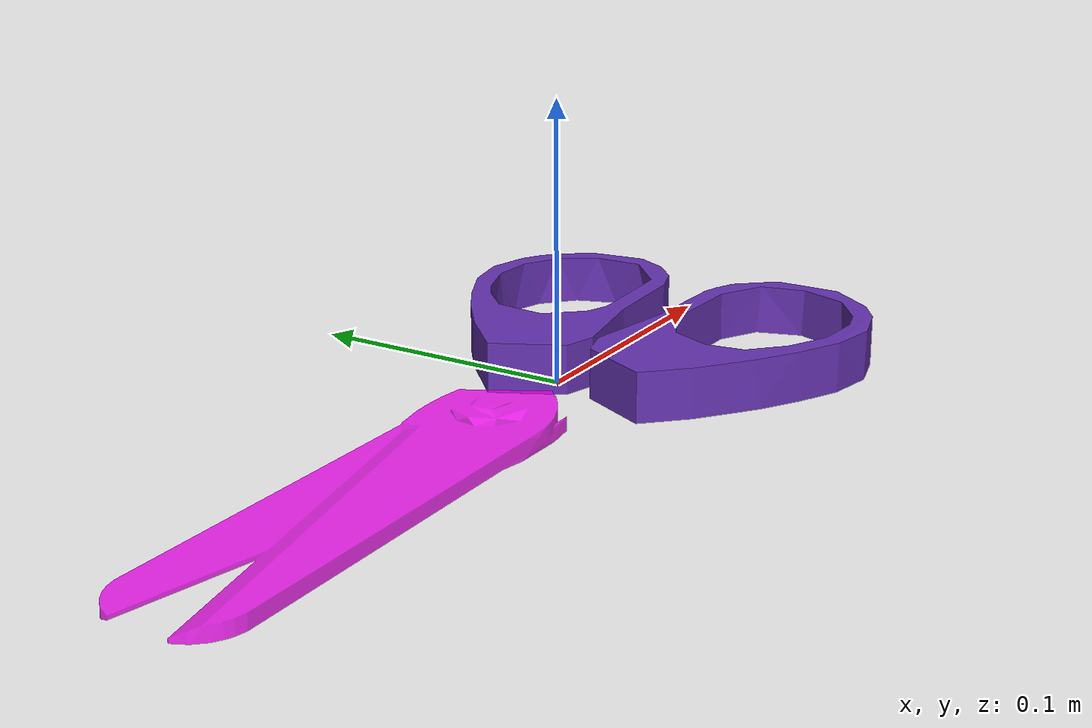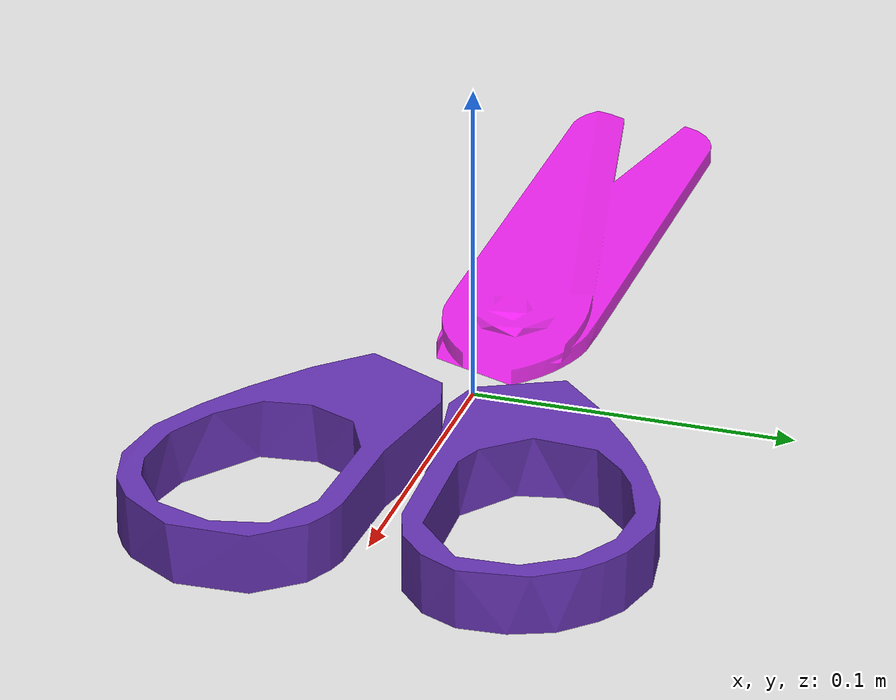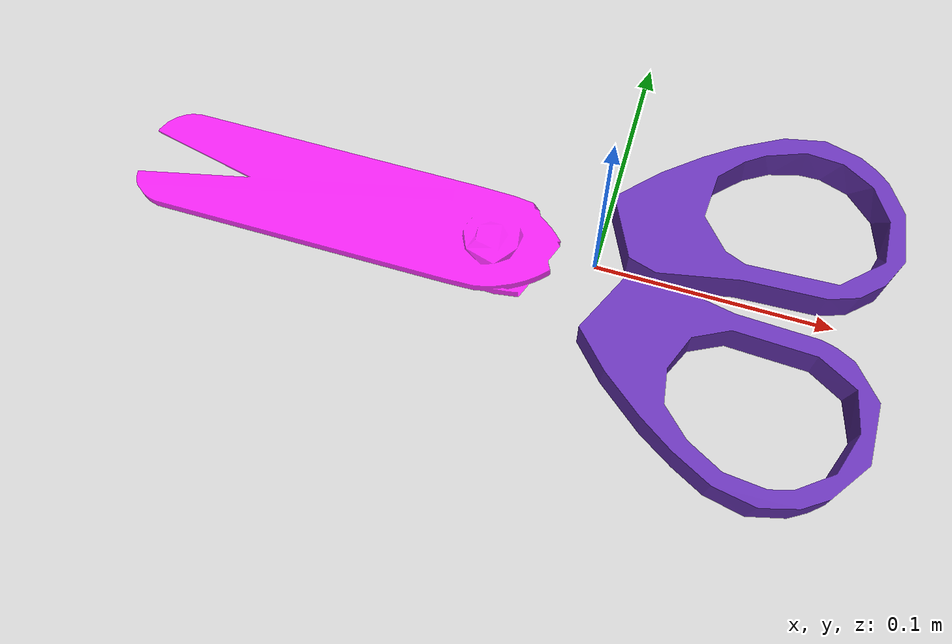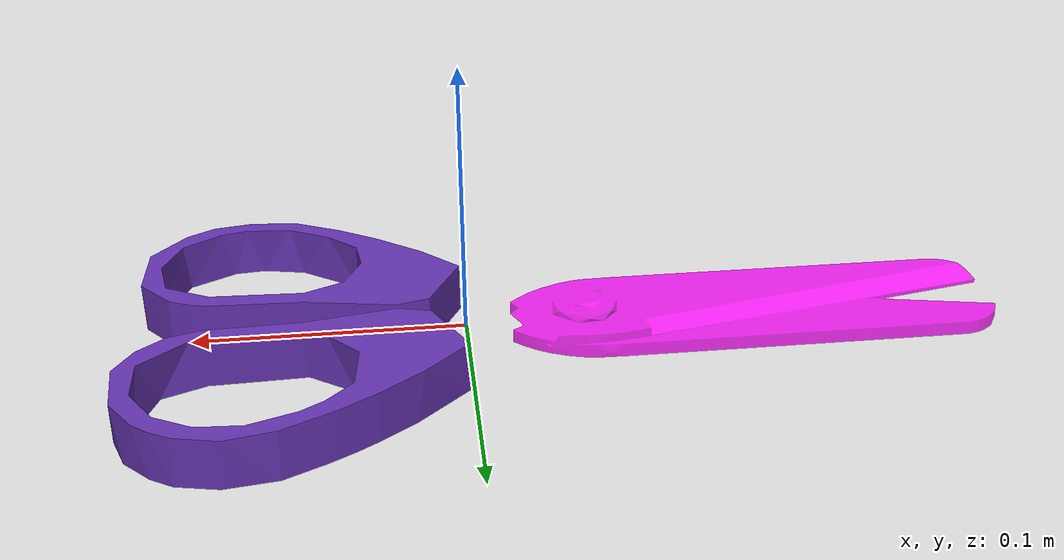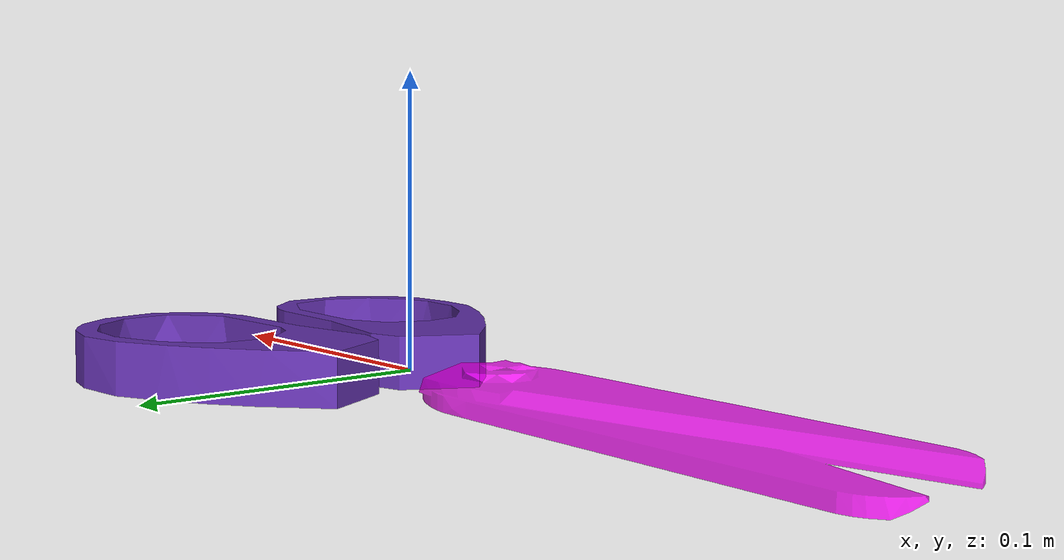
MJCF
<?xml version="1.0" encoding="utf-8"?>
<mujoco model="top_watertight_tiny">

  <asset>

    <mesh file="top_watertight_tiny.obj"/>

    <mesh file="top_watertight_tiny_collision_0.obj"/>

    <mesh file="top_watertight_tiny_collision_1.obj"/>

    <mesh file="top_watertight_tiny_collision_2.obj"/>

    <mesh file="top_watertight_tiny_collision_3.obj"/>

    <mesh file="top_watertight_tiny_collision_4.obj"/>

    <mesh file="top_watertight_tiny_collision_5.obj"/>

    <mesh file="top_watertight_tiny_collision_6.obj"/>

    <mesh file="top_watertight_tiny_collision_7.obj"/>

    <mesh file="top_watertight_tiny_collision_8.obj"/>

    <mesh file="top_watertight_tiny_collision_9.obj"/>

    <mesh file="top_watertight_tiny_collision_10.obj"/>

    <mesh file="top_watertight_tiny_collision_11.obj"/>

    <mesh file="top_watertight_tiny_collision_12.obj"/>

    <mesh file="top_watertight_tiny_collision_13.obj"/>

    <mesh file="top_watertight_tiny_collision_14.obj"/>

    <mesh file="top_watertight_tiny_collision_15.obj"/>

    <mesh file="top_watertight_tiny_collision_16.obj"/>

    <mesh file="top_watertight_tiny_collision_17.obj"/>

    <mesh file="top_watertight_tiny_collision_18.obj"/>

    <mesh file="bottom_watertight_tiny.obj"/>

    <mesh file="bottom_watertight_tiny_collision_0.obj"/>

    <mesh file="bottom_watertight_tiny_collision_1.obj"/>

    <mesh file="bottom_watertight_tiny_collision_2.obj"/>

    <mesh file="bottom_watertight_tiny_collision_3.obj"/>

    <mesh file="bottom_watertight_tiny_collision_4.obj"/>

    <mesh file="bottom_watertight_tiny_collision_5.obj"/>

    <mesh file="bottom_watertight_tiny_collision_6.obj"/>

  </asset>

  <worldbody>

    <body name="top_watertight_tiny">

      <freejoint/>

      <geom mesh="top_watertight_tiny" group="2" type="mesh" rgba="0.4 0.2 0.7 1" contype="0" conaffinity="0" solimp="0.90 0.95 0.001" solref="0.02 1.0" density="100" friction="0.95 0.4 0.3"/>

      <geom mesh="top_watertight_tiny_collision_0" rgba="0.07835403746768099 0.3926829857806353 0.3862099841917618 1" group="3" type="mesh" solimp="0.90 0.95 0.001" solref="0.02 1.0" density="100" friction="0.95 0.4 0.3"/>

      <geom mesh="top_watertight_tiny_collision_1" rgba="0.014615010374805948 0.9597681835756474 0.9268308403156241 1" group="3" type="mesh" solimp="0.90 0.95 0.001" solref="0.02 1.0" density="100" friction="0.95 0.4 0.3"/>

      <geom mesh="top_watertight_tiny_collision_2" rgba="0.1259153466798364 0.25274338535759855 0.5944706128743712 1" group="3" type="mesh" solimp="0.90 0.95 0.001" solref="0.02 1.0" density="100" friction="0.95 0.4 0.3"/>

      <geom mesh="top_watertight_tiny_collision_3" rgba="0.5053273983265354 0.7648616612664398 0.8954951465147266 1" group="3" type="mesh" solimp="0.90 0.95 0.001" solref="0.02 1.0" density="100" friction="0.95 0.4 0.3"/>

      <geom mesh="top_watertight_tiny_collision_4" rgba="0.8391212107401084 0.26831653624723883 0.8040879772175782 1" group="3" type="mesh" solimp="0.90 0.95 0.001" solref="0.02 1.0" density="100" friction="0.95 0.4 0.3"/>

      <geom mesh="top_watertight_tiny_collision_5" rgba="0.8540548871554293 0.3629629452181705 0.917112698103194 1" group="3" type="mesh" solimp="0.90 0.95 0.001" solref="0.02 1.0" density="100" friction="0.95 0.4 0.3"/>

      <geom mesh="top_watertight_tiny_collision_6" rgba="0.04605620431409352 0.567550565810277 0.4893714824021954 1" group="3" type="mesh" solimp="0.90 0.95 0.001" solref="0.02 1.0" density="100" friction="0.95 0.4 0.3"/>

      <geom mesh="top_watertight_tiny_collision_7" rgba="0.8555349632098179 0.6484495614965262 0.5600912173819101 1" group="3" type="mesh" solimp="0.90 0.95 0.001" solref="0.02 1.0" density="100" friction="0.95 0.4 0.3"/>

      <geom mesh="top_watertight_tiny_collision_8" rgba="0.01931510013277926 0.3317255361540473 0.9778679220870377 1" group="3" type="mesh" solimp="0.90 0.95 0.001" solref="0.02 1.0" density="100" friction="0.95 0.4 0.3"/>

      <geom mesh="top_watertight_tiny_collision_9" rgba="0.835948462885831 0.18144195176040112 0.5106208529661125 1" group="3" type="mesh" solimp="0.90 0.95 0.001" solref="0.02 1.0" density="100" friction="0.95 0.4 0.3"/>

      <geom mesh="top_watertight_tiny_collision_10" rgba="0.4606482343138718 0.40303436960925143 0.18535259706218943 1" group="3" type="mesh" solimp="0.90 0.95 0.001" solref="0.02 1.0" density="100" friction="0.95 0.4 0.3"/>

      <geom mesh="top_watertight_tiny_collision_11" rgba="0.8696466620153726 0.9311156072918982 0.9388384268084612 1" group="3" type="mesh" solimp="0.90 0.95 0.001" solref="0.02 1.0" density="100" friction="0.95 0.4 0.3"/>

      <geom mesh="top_watertight_tiny_collision_12" rgba="0.14194185040837015 0.6985355736572513 0.8380688159779706 1" group="3" type="mesh" solimp="0.90 0.95 0.001" solref="0.02 1.0" density="100" friction="0.95 0.4 0.3"/>

      <geom mesh="top_watertight_tiny_collision_13" rgba="0.8405942267115258 0.2216864359947941 0.6978521421002788 1" group="3" type="mesh" solimp="0.90 0.95 0.001" solref="0.02 1.0" density="100" friction="0.95 0.4 0.3"/>

      <geom mesh="top_watertight_tiny_collision_14" rgba="0.505206846111147 0.8053772565613606 0.624528085031636 1" group="3" type="mesh" solimp="0.90 0.95 0.001" solref="0.02 1.0" density="100" friction="0.95 0.4 0.3"/>

      <geom mesh="top_watertight_tiny_collision_15" rgba="0.8959751260569063 0.6973112250275826 0.10141966673068048 1" group="3" type="mesh" solimp="0.90 0.95 0.001" solref="0.02 1.0" density="100" friction="0.95 0.4 0.3"/>

      <geom mesh="top_watertight_tiny_collision_16" rgba="0.6836355185500322 0.7672320764880727 0.19678468496777846 1" group="3" type="mesh" solimp="0.90 0.95 0.001" solref="0.02 1.0" density="100" friction="0.95 0.4 0.3"/>

      <geom mesh="top_watertight_tiny_collision_17" rgba="0.8271641370262214 0.9785178029367485 0.07908868252017065 1" group="3" type="mesh" solimp="0.90 0.95 0.001" solref="0.02 1.0" density="100" friction="0.95 0.4 0.3"/>

      <geom mesh="top_watertight_tiny_collision_18" rgba="0.583432771117204 0.5382397838531131 0.9934904228979924 1" group="3" type="mesh" solimp="0.90 0.95 0.001" solref="0.02 1.0" density="100" friction="0.95 0.4 0.3"/>

      <body name="bottom_watertight_tiny">

        <geom mesh="bottom_watertight_tiny" group="2" type="mesh" rgba="1 0 1 0.8" contype="0" conaffinity="0" solimp="0.90 0.95 0.001" solref="0.02 1.0" density="100" friction="0.95 0.4 0.3"/>

        <geom mesh="bottom_watertight_tiny_collision_0" rgba="0.9879233995320389 0.16102971469493632 0.7461707969698452 1" group="3" type="mesh" solimp="0.90 0.95 0.001" solref="0.02 1.0" density="100" friction="0.95 0.4 0.3"/>

        <geom mesh="bottom_watertight_tiny_collision_1" rgba="0.06597117280423936 0.6113509218994253 0.9830902918167367 1" group="3" type="mesh" solimp="0.90 0.95 0.001" solref="0.02 1.0" density="100" friction="0.95 0.4 0.3"/>

        <geom mesh="bottom_watertight_tiny_collision_2" rgba="0.09138968266190184 0.18010842363565627 0.3442808974351388 1" group="3" type="mesh" solimp="0.90 0.95 0.001" solref="0.02 1.0" density="100" friction="0.95 0.4 0.3"/>

        <geom mesh="bottom_watertight_tiny_collision_3" rgba="0.6685137749599078 0.10681276398460071 0.969036983918545 1" group="3" type="mesh" solimp="0.90 0.95 0.001" solref="0.02 1.0" density="100" friction="0.95 0.4 0.3"/>

        <geom mesh="bottom_watertight_tiny_collision_4" rgba="0.7092459463000642 0.5326357503456379 0.8691400552962312 1" group="3" type="mesh" solimp="0.90 0.95 0.001" solref="0.02 1.0" density="100" friction="0.95 0.4 0.3"/>

        <geom mesh="bottom_watertight_tiny_collision_5" rgba="0.4504006411784033 0.7672259048855568 0.6495549087220401 1" group="3" type="mesh" solimp="0.90 0.95 0.001" solref="0.02 1.0" density="100" friction="0.95 0.4 0.3"/>

        <geom mesh="bottom_watertight_tiny_collision_6" rgba="0.9440346137089726 0.03689103613727995 0.29797799500642985 1" group="3" type="mesh" solimp="0.90 0.95 0.001" solref="0.02 1.0" density="100" friction="0.95 0.4 0.3"/>

        <site name="bottom_watertight_tiny_touch_site" pos="0 0 0" size="0.2" rgba="1 0 0 0." type="sphere"/>
      </body>

      <site name="top_watertight_tiny_touch_site" pos="0 0 0" size="0.2" rgba="1 0 0 0." type="sphere"/>
    </body>

  </worldbody>

  <sensor>
    <touch name="top_watertight_tiny_touch" site="top_watertight_tiny_touch_site"/>
    <touch name="bottom_watertight_tiny_touch" site="bottom_watertight_tiny_touch_site"/>
  </sensor>
</mujoco>
